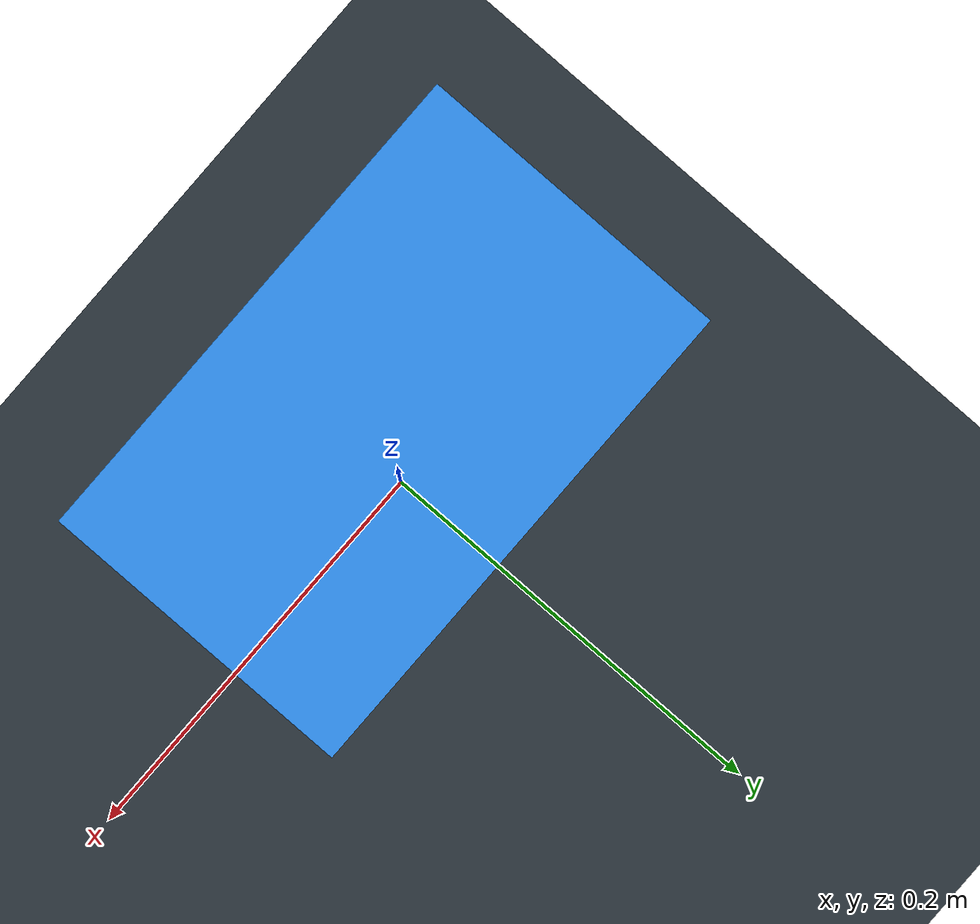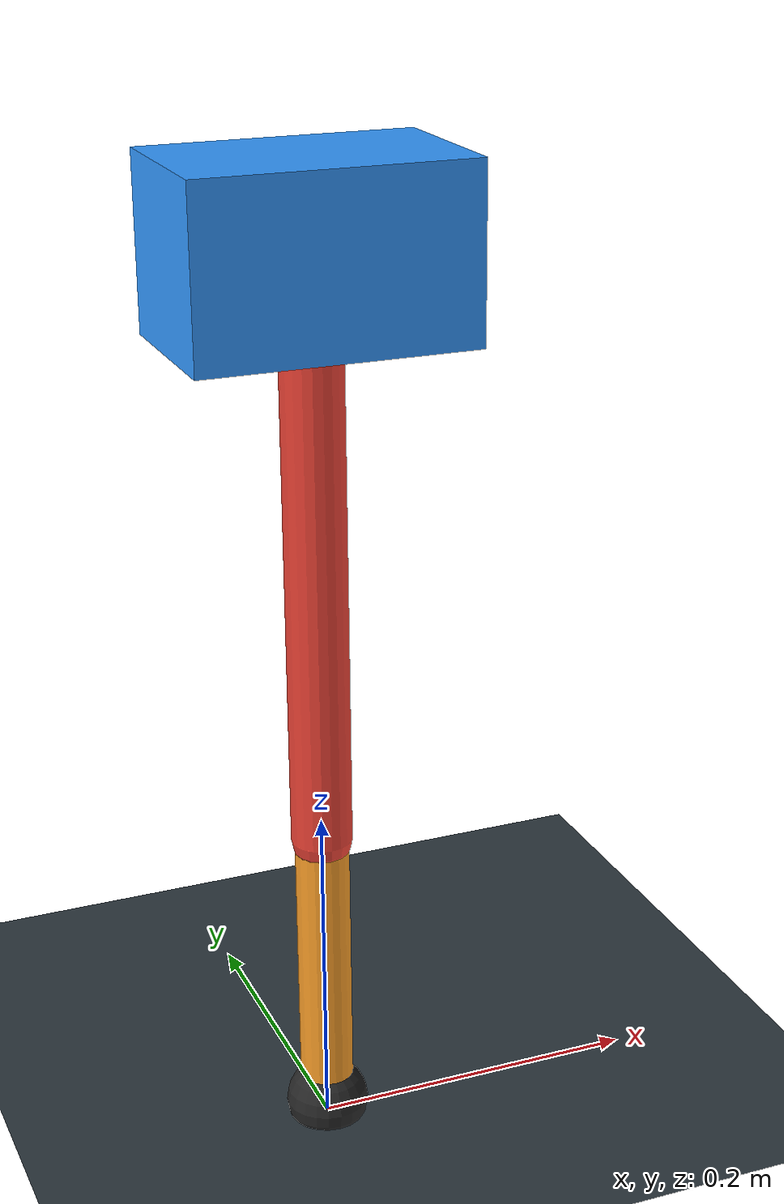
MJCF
<mujoco model="single_axis_two_bar">
  <compiler angle="radian" inertiafromgeom="true"/>
  <option timestep="0.001" integrator="implicitfast" gravity="0 0 -9.81"/>
  <default>
    <joint damping="0.08"/>
    <geom friction="1.2 0.01 0.0001" condim="3"/>
  </default>
  <worldbody>
    <geom name="floor" type="plane" size="5 5 0.1" rgba="0.18 0.22 0.25 1"/>
    <body name="carriage" pos="0 0 0.536906970506295">
      <joint name="pole_slide" type="slide" axis="0 0 1"/>
      <geom name="payload" type="box" size="0.08 0.05 0.05" mass="2.6631376072944963" rgba="0.2 0.6 1 1"/>
      <body name="thigh" pos="0 0 0">
        <joint name="hip" type="hinge" axis="0 1 0"/>
        <geom name="thigh_link" type="capsule" fromto="0 0 0 0 0 -0.34826755706368756" size="0.018" mass="0.24814523635762148" rgba="0.9 0.25 0.2 1"/>
        <body name="shank" pos="0 0 -0.34826755706368756">
          <joint name="knee" type="hinge" axis="0 1 0"/>
          <geom name="shank_link" type="capsule" fromto="0 0 0 0 0 -0.17947158778816297" size="0.016" mass="0.12787587780686446" rgba="0.95 0.6 0.15 1"/>
          <geom name="foot" type="sphere" pos="0 0 -0.17947158778816297" size="0.025" mass="0.03" rgba="0.15 0.15 0.15 1"/>
          <site name="toe" pos="0 0 -0.17947158778816297" size="0.008"/>
        </body>
      </body>
    </body>
  </worldbody>
  <actuator>
    <motor name="hip_motor" joint="hip" ctrlrange="-34.82249823951568 34.82249823951568"/>
    <motor name="knee_motor" joint="knee" ctrlrange="-36.17503697697705 36.17503697697705"/>
  </actuator>
</mujoco>
